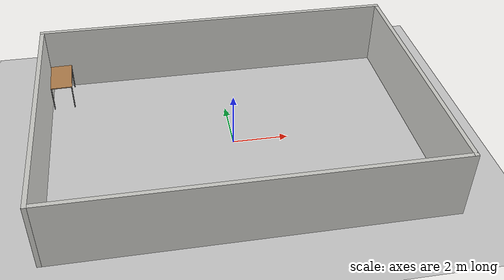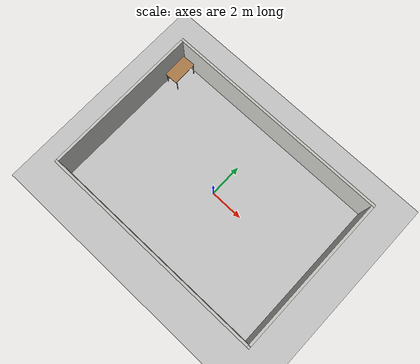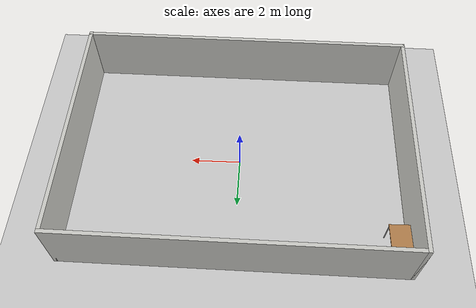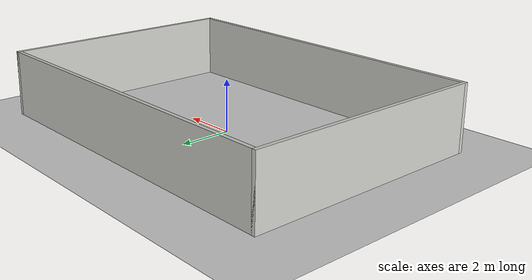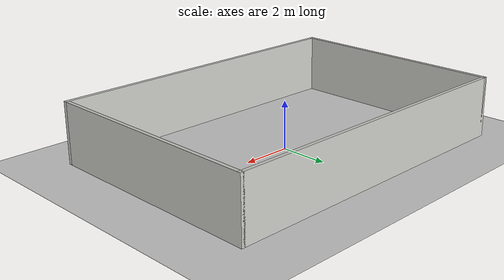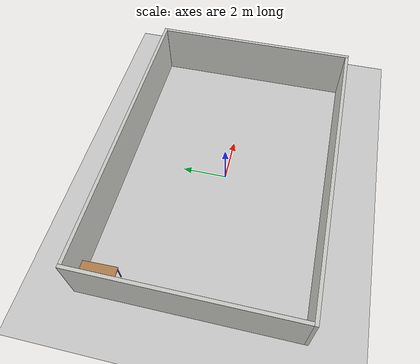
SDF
<sdf version="1.7">
 <world name="default">
  <light name="sun" type="directional">
   <pose>0 0 10 0 -0 0</pose>
   <diffuse>0.8 0.8 0.8 1</diffuse>
   <specular>0.2 0.2 0.2 1</specular>
   <attenuation>
    <range>1000</range>
    <constant>0.9</constant>
    <linear>0.01</linear>
    <quadratic>0.001</quadratic>
   </attenuation>
   <direction>-0.5 0.1 -0.9</direction>
   <spot><inner_angle>0</inner_angle><outer_angle>0</outer_angle><falloff>0</falloff></spot>
  </light>
  <model name="ground_plane">
   <static>1</static>
   <link name="link">
    <collision name="collision">
     <geometry><plane><normal>0 0 1</normal><size>100 100</size></plane></geometry>
     <surface>
      <contact><collide_bitmask>65535</collide_bitmask></contact>
      <friction><ode><mu>100</mu><mu2>50</mu2></ode></friction>
     </surface>
    </collision>
    <visual name="visual">
     <cast_shadows>0</cast_shadows>
     <geometry><plane><normal>0 0 1</normal><size>100 100</size></plane></geometry>
     <material>
      <script><uri>file://media/materials/scripts/gazebo.material</uri><name>Gazebo/Grey</name></script>
     </material>
    </visual>
   </link>
  </model>
  <gravity>0 0 -9.8</gravity>
  <magnetic_field>6e-06 2.3e-05 -4.2e-05</magnetic_field>
  <atmosphere type="adiabatic"/>
  <physics type="ode">
   <max_step_size>0.001</max_step_size>
   <real_time_factor>1</real_time_factor>
   <real_time_update_rate>1000</real_time_update_rate>
  </physics>
  <scene><ambient>0.4 0.4 0.4 1</ambient><background>0.7 0.7 0.7 1</background><shadows>1</shadows></scene>
  <audio><device>default</device></audio>
  <spherical_coordinates>
   <surface_model>EARTH_WGS84</surface_model>
   <latitude_deg>0</latitude_deg>
   <longitude_deg>0</longitude_deg>
   <elevation>0</elevation>
   <heading_deg>0</heading_deg>
  </spherical_coordinates>
  <model name="table">
   <static>1</static>
   <link name="link">
    <collision name="surface">
     <pose>0 0 1 0 -0 0</pose>
     <geometry><box><size>1.5 0.8 0.03</size></box></geometry>
     <surface><friction><ode><mu>0.6</mu><mu2>0.6</mu2></ode></friction></surface>
    </collision>
    <visual name="visual1">
     <pose>0 0 1 0 -0 0</pose>
     <geometry><box><size>1.5 0.8 0.03</size></box></geometry>
     <material>
      <script><uri>file://media/materials/scripts/gazebo.material</uri><name>Gazebo/Wood</name></script>
     </material>
    </visual>
    <collision name="front_left_leg">
     <pose>0.68 0.38 0.5 0 -0 0</pose>
     <geometry><cylinder><radius>0.02</radius><length>1</length></cylinder></geometry>
    </collision>
    <visual name="front_left_leg">
     <pose>0.68 0.38 0.5 0 -0 0</pose>
     <geometry><cylinder><radius>0.02</radius><length>1</length></cylinder></geometry>
     <material>
      <script><uri>file://media/materials/scripts/gazebo.material</uri><name>Gazebo/Grey</name></script>
     </material>
    </visual>
    <collision name="front_right_leg">
     <pose>0.68 -0.38 0.5 0 -0 0</pose>
     <geometry><cylinder><radius>0.02</radius><length>1</length></cylinder></geometry>
    </collision>
    <visual name="front_right_leg">
     <pose>0.68 -0.38 0.5 0 -0 0</pose>
     <geometry><cylinder><radius>0.02</radius><length>1</length></cylinder></geometry>
     <material>
      <script><uri>file://media/materials/scripts/gazebo.material</uri><name>Gazebo/Grey</name></script>
     </material>
    </visual>
    <collision name="back_right_leg">
     <pose>-0.68 -0.38 0.5 0 -0 0</pose>
     <geometry><cylinder><radius>0.02</radius><length>1</length></cylinder></geometry>
    </collision>
    <visual name="back_right_leg">
     <pose>-0.68 -0.38 0.5 0 -0 0</pose>
     <geometry><cylinder><radius>0.02</radius><length>1</length></cylinder></geometry>
     <material>
      <script><uri>file://media/materials/scripts/gazebo.material</uri><name>Gazebo/Grey</name></script>
     </material>
    </visual>
    <collision name="back_left_leg">
     <pose>-0.68 0.38 0.5 0 -0 0</pose>
     <geometry><cylinder><radius>0.02</radius><length>1</length></cylinder></geometry>
    </collision>
    <visual name="back_left_leg">
     <pose>-0.68 0.38 0.5 0 -0 0</pose>
     <geometry><cylinder><radius>0.02</radius><length>1</length></cylinder></geometry>
     <material>
      <script><uri>file://media/materials/scripts/gazebo.material</uri><name>Gazebo/Grey</name></script>
     </material>
    </visual>
   </link>
   <pose>-6.14602 3.77272 0 0 0 -1.54747</pose>
  </model>
  <model name="first_test_walls">
   <pose>0.006531 0.001287 0 0 -0 0</pose>
   <link name="Wall_3">
    <collision name="Wall_3_Collision">
     <geometry><box><size>9.5 0.15 2.5</size></box></geometry>
     <pose>0 0 1.25 0 -0 0</pose>
    </collision>
    <visual name="Wall_3_Visual">
     <pose>0 0 1.25 0 -0 0</pose>
     <geometry><box><size>9.5 0.15 2.5</size></box></geometry>
     <material>
      <script><uri>file://media/materials/scripts/gazebo.material</uri><name>Gazebo/CeilingTiled</name></script>
      <ambient>1 1 1 1</ambient>
     </material>
     <meta><layer>0</layer></meta>
    </visual>
    <pose>-6.675 0 0 0 -0 1.5708</pose>
   </link>
   <link name="Wall_4">
    <collision name="Wall_4_Collision">
     <geometry><box><size>13.5 0.15 2.5</size></box></geometry>
     <pose>0 0 1.25 0 -0 0</pose>
    </collision>
    <visual name="Wall_4_Visual">
     <pose>0 0 1.25 0 -0 0</pose>
     <geometry><box><size>13.5 0.15 2.5</size></box></geometry>
     <material>
      <script><uri>file://media/materials/scripts/gazebo.material</uri><name>Gazebo/CeilingTiled</name></script>
      <ambient>1 1 1 1</ambient>
     </material>
     <meta><layer>0</layer></meta>
    </visual>
    <pose>0 4.675 0 0 -0 0</pose>
   </link>
   <link name="Wall_5">
    <collision name="Wall_5_Collision">
     <geometry><box><size>9.5 0.15 2.5</size></box></geometry>
     <pose>0 0 1.25 0 -0 0</pose>
    </collision>
    <visual name="Wall_5_Visual">
     <pose>0 0 1.25 0 -0 0</pose>
     <geometry><box><size>9.5 0.15 2.5</size></box></geometry>
     <material>
      <script><uri>file://media/materials/scripts/gazebo.material</uri><name>Gazebo/CeilingTiled</name></script>
      <ambient>1 1 1 1</ambient>
     </material>
     <meta><layer>0</layer></meta>
    </visual>
    <pose>6.675 0 0 0 -0 -1.5708</pose>
   </link>
   <link name="Wall_6">
    <collision name="Wall_6_Collision">
     <geometry><box><size>13.5 0.15 2.5</size></box></geometry>
     <pose>0 0 1.25 0 -0 0</pose>
    </collision>
    <visual name="Wall_6_Visual">
     <pose>0 0 1.25 0 -0 0</pose>
     <geometry><box><size>13.5 0.15 2.5</size></box></geometry>
     <material>
      <script><uri>file://media/materials/scripts/gazebo.material</uri><name>Gazebo/CeilingTiled</name></script>
      <ambient>1 1 1 1</ambient>
     </material>
     <meta><layer>0</layer></meta>
    </visual>
    <pose>0 -4.675 0 0 -0 3.14159</pose>
   </link>
   <static>1</static>
  </model>
 </world>
</sdf>
